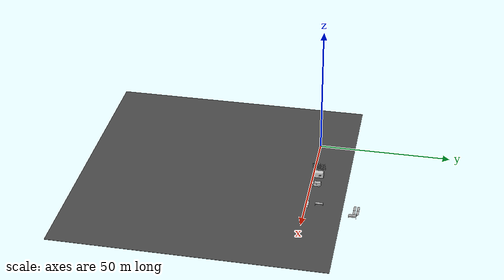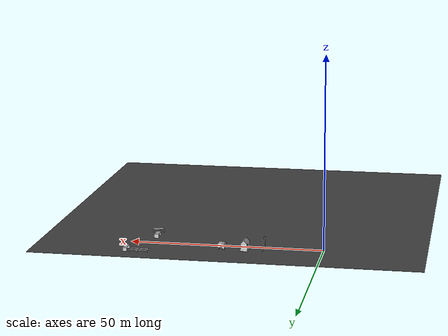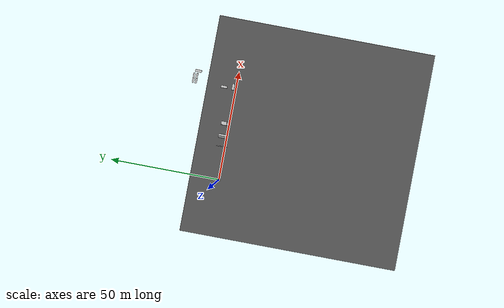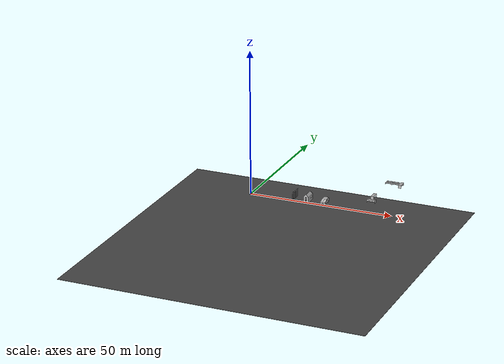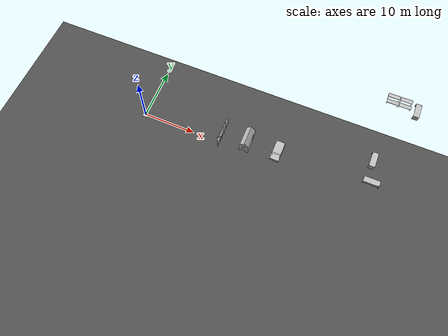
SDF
<sdf version="1.6">
 <world name="default">
  <light name="sun" type="directional">
   <pose>0 0 10 0 -0 0</pose>
   <diffuse>0.8 0.8 0.8 1</diffuse>
   <specular>0.2 0.2 0.2 1</specular>
   <attenuation>
    <range>1000</range>
    <constant>0.9</constant>
    <linear>0.01</linear>
    <quadratic>0.001</quadratic>
   </attenuation>
   <direction>-0.5 0.1 -0.9</direction>
   <spot><inner_angle>0</inner_angle><outer_angle>0</outer_angle><falloff>0</falloff></spot>
  </light>
  <gravity>0 0 -9.8</gravity>
  <magnetic_field>6e-06 2.3e-05 -4.2e-05</magnetic_field>
  <atmosphere type="adiabatic"/>
  <physics type="ode">
   <max_step_size>0.001</max_step_size>
   <real_time_factor>1</real_time_factor>
   <real_time_update_rate>1000</real_time_update_rate>
  </physics>
  <scene><ambient>0.4 0.4 0.4 1</ambient><background>0.7 0.7 0.7 1</background><shadows>1</shadows></scene>
  <spherical_coordinates>
   <surface_model>EARTH_WGS84</surface_model>
   <latitude_deg>0</latitude_deg>
   <longitude_deg>0</longitude_deg>
   <elevation>0</elevation>
   <heading_deg>0</heading_deg>
  </spherical_coordinates>
  <model name="starting_point">
   <static>1</static>
   <link name="link">
    <collision name="collision"><geometry><box><size>1 1 0.05</size></box></geometry></collision>
    <visual name="visual">
     <geometry><box><size>1 1 0.05</size></box></geometry>
     <material>
      <script>
       <uri>model://starting_point/materials/scripts</uri>
       <uri>model://starting_point/materials/textures</uri>
       <name>vrc/starting_point</name>
      </script>
     </material>
    </visual>
   </link>
   <pose>0 0 0.026 0 -0 0</pose>
  </model>
  <model name="tactical_vehicle">
   <static>1</static>
   <link name="link">
    <collision name="collision">
     <geometry>
      <mesh><scale>0.046 0.046 0.046</scale><uri>model://tactical_vehicle/meshes/tactical_vehicle.obj</uri></mesh>
     </geometry>
    </collision>
    <visual name="visual">
     <geometry>
      <mesh><scale>0.046 0.046 0.046</scale><uri>model://tactical_vehicle/meshes/tactical_vehicle.obj</uri></mesh>
     </geometry>
    </visual>
   </link>
   <pose>25.8 2 0 0 -0 3.1297</pose>
  </model>
  <model name="asphalt_plane_new">
   <static>1</static>
   <link name="link">
    <collision name="collision"><geometry><box><size>100 100 0.1</size></box></geometry></collision>
    <visual name="visual">
     <cast_shadows>0</cast_shadows>
     <geometry><box><size>100 100 0.1</size></box></geometry>
     <material>
      <script>
       <uri>model://asphalt_plane_new/materials/scripts</uri>
       <uri>model://asphalt_plane_new/materials/textures</uri>
       <name>vrc/asphalt</name>
      </script>
     </material>
    </visual>
   </link>
   <pose>24 -36.5 0 0 -0 0</pose>
  </model>
  <model name="outdoor_fence_duck">
   <static>1</static>
   <link name="outdoor_fence_duck">
    <pose>0 0 0 1.5708 -0 1.5708</pose>
    <collision name="outdoor_fence_duck">
     <geometry>
      <mesh><scale>0.001 0.001 0.001</scale><uri>model://outdoor_fence_duck/meshes/outdoor_fence.STL</uri></mesh>
     </geometry>
    </collision>
    <visual name="outdoor_fence_duck">
     <cast_shadows>0</cast_shadows>
     <geometry>
      <mesh><scale>0.001 0.001 0.001</scale><uri>model://outdoor_fence_duck/meshes/outdoor_fence.STL</uri></mesh>
     </geometry>
    </visual>
   </link>
   <pose>15 3 0 0 -0 0</pose>
  </model>
  <model name="outdoor_fence_duck_0">
   <static>1</static>
   <link name="outdoor_fence_duck">
    <pose>0 0 0 1.5708 -0 1.5708</pose>
    <collision name="outdoor_fence_duck">
     <geometry>
      <mesh><scale>0.001 0.001 0.001</scale><uri>model://outdoor_fence_duck/meshes/outdoor_fence.STL</uri></mesh>
     </geometry>
    </collision>
    <visual name="outdoor_fence_duck">
     <cast_shadows>0</cast_shadows>
     <geometry>
      <mesh><scale>0.001 0.001 0.001</scale><uri>model://outdoor_fence_duck/meshes/outdoor_fence.STL</uri></mesh>
     </geometry>
    </visual>
   </link>
   <pose>15 2 0 0 -0 0</pose>
  </model>
  <model name="outdoor_fence_duck_1">
   <static>1</static>
   <link name="outdoor_fence_duck">
    <pose>0 0 0 1.5708 -0 1.5708</pose>
    <collision name="outdoor_fence_duck">
     <geometry>
      <mesh><scale>0.001 0.001 0.001</scale><uri>model://outdoor_fence_duck/meshes/outdoor_fence.STL</uri></mesh>
     </geometry>
    </collision>
    <visual name="outdoor_fence_duck">
     <cast_shadows>0</cast_shadows>
     <geometry>
      <mesh><scale>0.001 0.001 0.001</scale><uri>model://outdoor_fence_duck/meshes/outdoor_fence.STL</uri></mesh>
     </geometry>
    </visual>
   </link>
   <pose>15 1 0 0 -0 0</pose>
  </model>
  <model name="outdoor_fence_duck_2">
   <static>1</static>
   <link name="outdoor_fence_duck">
    <pose>0 0 0 1.5708 -0 1.5708</pose>
    <collision name="outdoor_fence_duck">
     <geometry>
      <mesh><scale>0.001 0.001 0.001</scale><uri>model://outdoor_fence_duck/meshes/outdoor_fence.STL</uri></mesh>
     </geometry>
    </collision>
    <visual name="outdoor_fence_duck">
     <cast_shadows>0</cast_shadows>
     <geometry>
      <mesh><scale>0.001 0.001 0.001</scale><uri>model://outdoor_fence_duck/meshes/outdoor_fence.STL</uri></mesh>
     </geometry>
    </visual>
   </link>
   <pose>15 0 0 0 -0 0</pose>
  </model>
  <model name="outdoor_fence_duck_3">
   <static>1</static>
   <link name="outdoor_fence_duck">
    <pose>0 0 0 1.5708 -0 1.5708</pose>
    <collision name="outdoor_fence_duck">
     <geometry>
      <mesh><scale>0.001 0.001 0.001</scale><uri>model://outdoor_fence_duck/meshes/outdoor_fence.STL</uri></mesh>
     </geometry>
    </collision>
    <visual name="outdoor_fence_duck">
     <cast_shadows>0</cast_shadows>
     <geometry>
      <mesh><scale>0.001 0.001 0.001</scale><uri>model://outdoor_fence_duck/meshes/outdoor_fence.STL</uri></mesh>
     </geometry>
    </visual>
   </link>
   <pose>15 -0.97 0 0 -0 0</pose>
  </model>
  <model name="tent_add">
   <static>1</static>
   <link name="tent_add">
    <pose>0 0 0 1.57 -0 0</pose>
    <collision name="tent_add">
     <geometry><mesh><scale>0.02 0.04 0.02</scale><uri>model://tent_add/model.dae</uri></mesh></geometry>
    </collision>
    <visual name="tent_add">
     <cast_shadows>0</cast_shadows>
     <geometry><mesh><scale>0.02 0.04 0.02</scale><uri>model://tent_add/model.dae</uri></mesh></geometry>
     <material><script><name>tent_add</name><uri>model://tent_add/model.dae</uri></script></material>
    </visual>
   </link>
   <pose>20 1.4 0 0 -0 1.5708</pose>
  </model>
  <model name="bed_add">
   <static>1</static>
   <link name="bed_add">
    <pose>0 0 0.4 1.57 -0 0</pose>
    <collision name="bed_add">
     <geometry><mesh><scale>0.5 0.5 0.5</scale><uri>model://bed_add/bed.dae</uri></mesh></geometry>
    </collision>
    <visual name="bed_add">
     <cast_shadows>0</cast_shadows>
     <geometry><mesh><scale>0.5 0.5 0.5</scale><uri>model://bed_add/bed.dae</uri></mesh></geometry>
     <material><script><name>bed_add</name><uri>model://bed_add/bed.dae</uri></script></material>
    </visual>
   </link>
   <pose>44.5 18.2 3.2826 0 -0 1.5708</pose>
  </model>
  <model name="bed_add_0">
   <static>1</static>
   <link name="bed_add">
    <pose>0 0 0.4 1.57 -0 0</pose>
    <collision name="bed_add">
     <geometry><mesh><scale>0.5 0.5 0.5</scale><uri>model://bed_add/bed.dae</uri></mesh></geometry>
    </collision>
    <visual name="bed_add">
     <cast_shadows>0</cast_shadows>
     <geometry><mesh><scale>0.5 0.5 0.5</scale><uri>model://bed_add/bed.dae</uri></mesh></geometry>
     <material><script><name>bed_add</name><uri>model://bed_add/bed.dae</uri></script></material>
    </visual>
   </link>
   <pose>44.5 19.5 3.2826 0 -0 1.5708</pose>
  </model>
  <model name="bed_add_1">
   <static>1</static>
   <link name="bed_add">
    <pose>0 0 0.4 1.57 -0 0</pose>
    <collision name="bed_add">
     <geometry><mesh><scale>0.5 0.5 0.5</scale><uri>model://bed_add/bed.dae</uri></mesh></geometry>
    </collision>
    <visual name="bed_add">
     <cast_shadows>0</cast_shadows>
     <geometry><mesh><scale>0.5 0.5 0.5</scale><uri>model://bed_add/bed.dae</uri></mesh></geometry>
     <material><script><name>bed_add</name><uri>model://bed_add/bed.dae</uri></script></material>
    </visual>
   </link>
   <pose>42.2 19.5 3.2826 0 -0 1.5708</pose>
  </model>
  <model name="bed_add_2">
   <static>1</static>
   <link name="bed_add">
    <pose>0 0 0.4 1.57 -0 0</pose>
    <collision name="bed_add">
     <geometry><mesh><scale>0.5 0.5 0.5</scale><uri>model://bed_add/bed.dae</uri></mesh></geometry>
    </collision>
    <visual name="bed_add">
     <cast_shadows>0</cast_shadows>
     <geometry><mesh><scale>0.5 0.5 0.5</scale><uri>model://bed_add/bed.dae</uri></mesh></geometry>
     <material><script><name>bed_add</name><uri>model://bed_add/bed.dae</uri></script></material>
    </visual>
   </link>
   <pose>42.2 18.2 3.2826 0 -0 1.5708</pose>
  </model>
  <model name="desk_add">
   <static>1</static>
   <link name="desk_add">
    <pose>0 0 0 1.57 -0 0</pose>
    <collision name="desk_add">
     <geometry><mesh><scale>0.007 0.007 0.007</scale><uri>model://desk_add/desk.dae</uri></mesh></geometry>
    </collision>
    <visual name="desk_add">
     <cast_shadows>0</cast_shadows>
     <geometry><mesh><scale>0.007 0.007 0.007</scale><uri>model://desk_add/desk.dae</uri></mesh></geometry>
     <material><script><name>desk_add</name><uri>model://desk_add/desk.dae</uri></script></material>
    </visual>
   </link>
   <pose>42.5373 1.37905 3.2826 0 -0 3.14159</pose>
  </model>
  <model name="desk_add_0">
   <static>1</static>
   <link name="desk_add">
    <pose>0 0 0 1.57 -0 0</pose>
    <collision name="desk_add">
     <geometry><mesh><scale>0.007 0.007 0.007</scale><uri>model://desk_add/desk.dae</uri></mesh></geometry>
    </collision>
    <visual name="desk_add">
     <cast_shadows>0</cast_shadows>
     <geometry><mesh><scale>0.007 0.007 0.007</scale><uri>model://desk_add/desk.dae</uri></mesh></geometry>
     <material><script><name>desk_add</name><uri>model://desk_add/desk.dae</uri></script></material>
    </visual>
   </link>
   <pose>46.55 17.86 3.2826 0 0 -1.5708</pose>
  </model>
  <model name="desk_add_1">
   <static>1</static>
   <link name="desk_add">
    <pose>0 0 0 1.57 -0 0</pose>
    <collision name="desk_add">
     <geometry><mesh><scale>0.007 0.007 0.007</scale><uri>model://desk_add/desk.dae</uri></mesh></geometry>
    </collision>
    <visual name="desk_add">
     <cast_shadows>0</cast_shadows>
     <geometry><mesh><scale>0.007 0.007 0.007</scale><uri>model://desk_add/desk.dae</uri></mesh></geometry>
     <material><script><name>desk_add</name><uri>model://desk_add/desk.dae</uri></script></material>
    </visual>
   </link>
   <pose>42 5.3 3.2826 0 -0 1.5708</pose>
  </model>
 </world>
</sdf>
